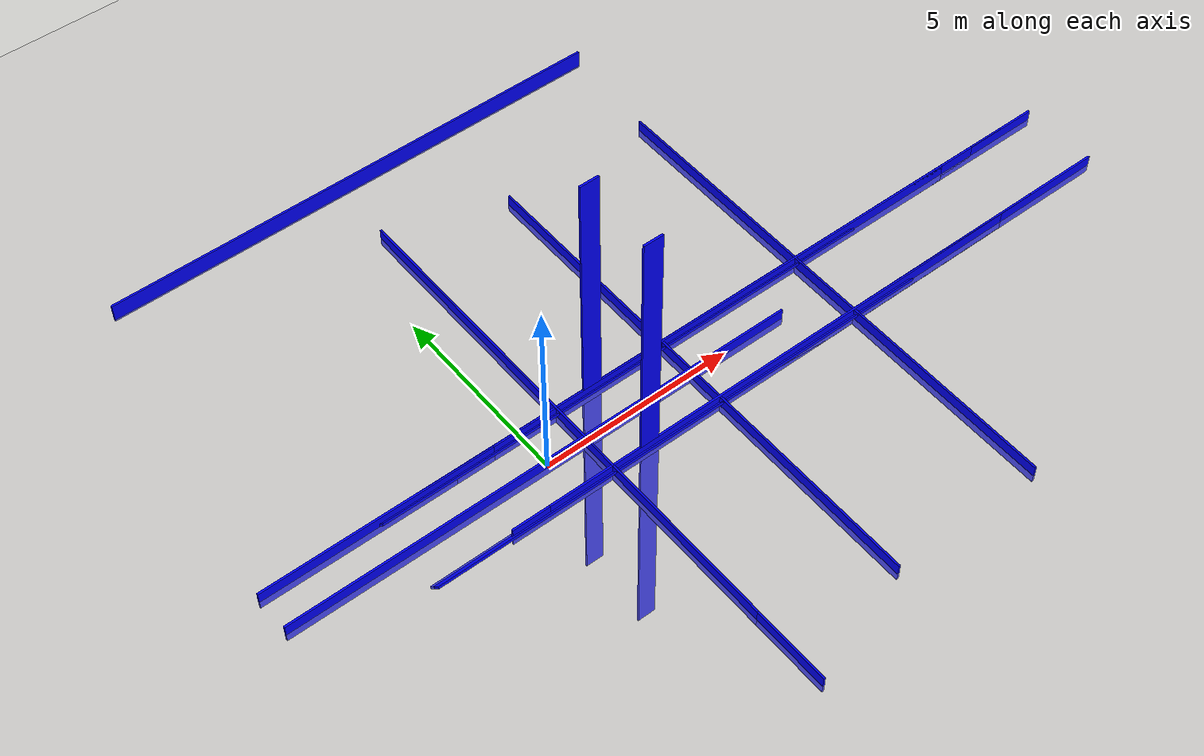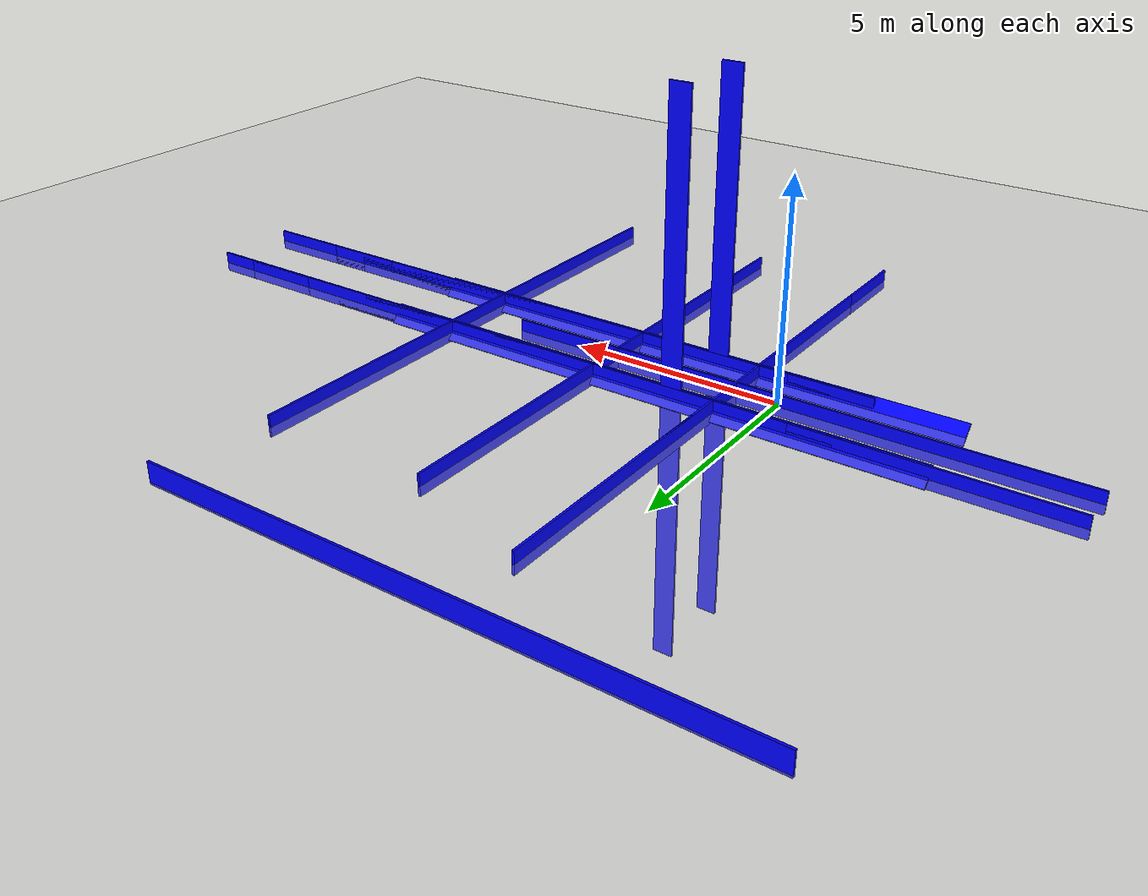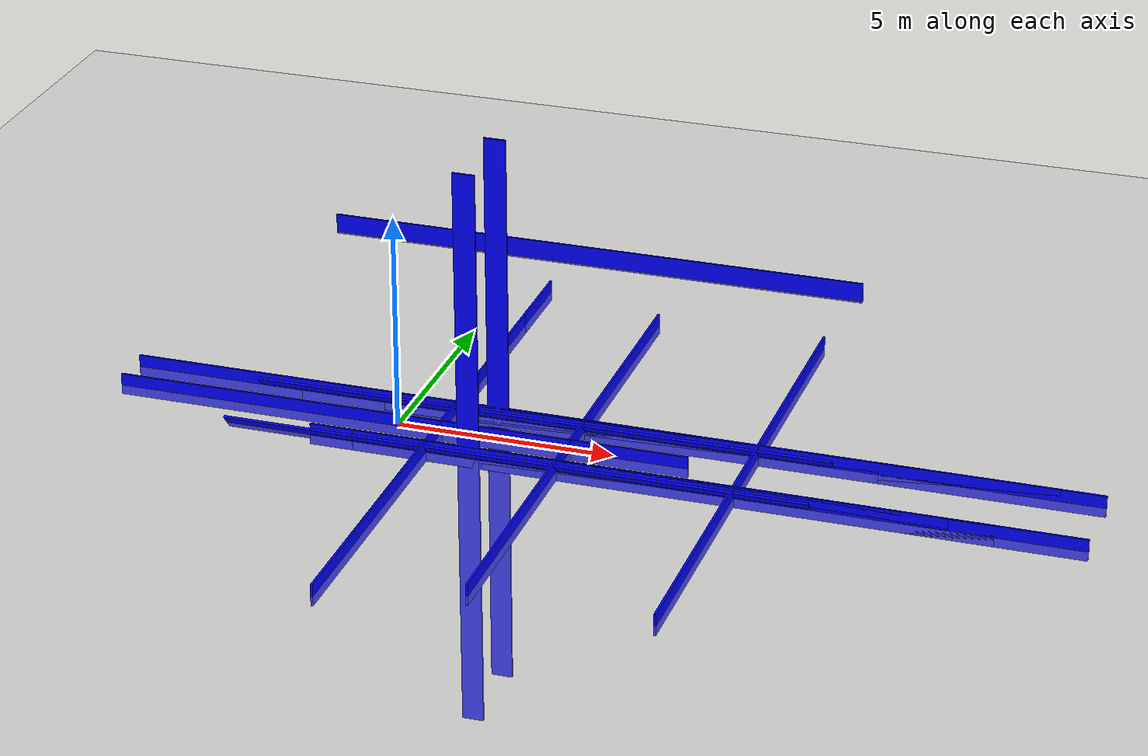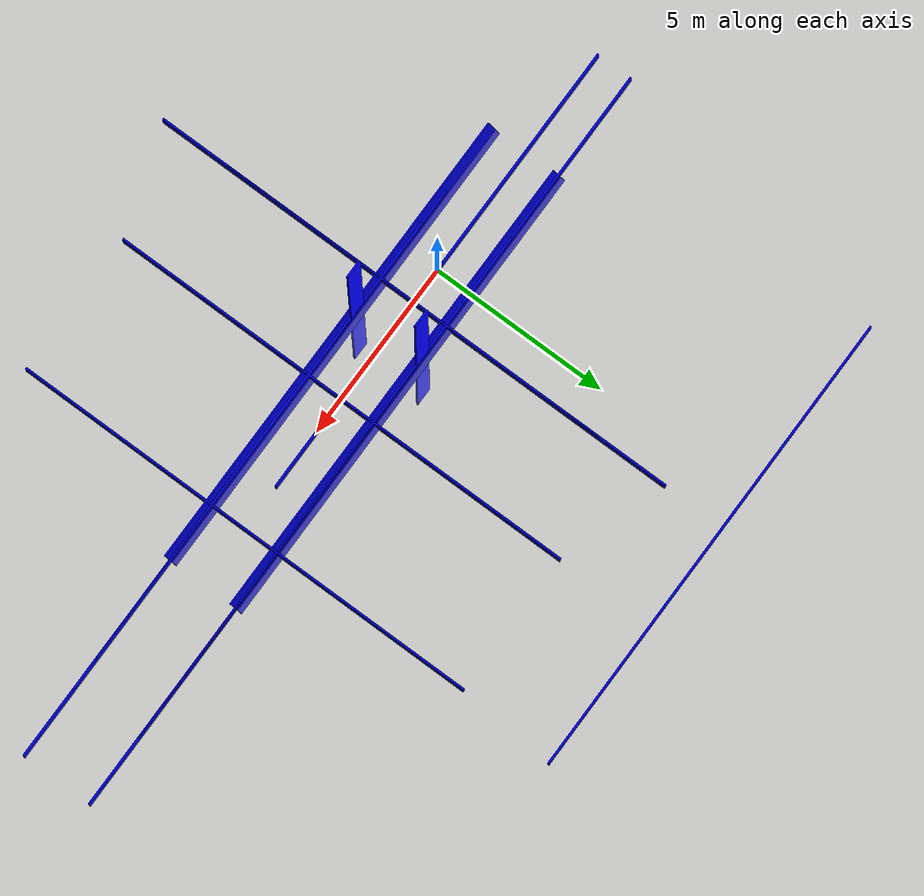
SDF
<?xml version="1.0" ?>
<sdf version='1.9'>
  <world name='obstacle_track'>

  <!-- Physics definitions -->
    <physics name='1ms' type='ignored'>
      <max_step_size>0.001</max_step_size>
      <real_time_factor>1</real_time_factor>
      <real_time_update_rate>1000</real_time_update_rate>
    </physics>
    <gravity>0 0 -9.8</gravity>
    <magnetic_field>6e-06 2.3e-05 -4.2e-05</magnetic_field>
    <atmosphere type='adiabatic'/>

    <!-- plugins -->
    <plugin name='gz::sim::systems::Physics' filename='ignition-gazebo-physics-system'/>
    <plugin name='gz::sim::systems::UserCommands' filename='ignition-gazebo-user-commands-system'/>
    <plugin name='gz::sim::systems::SceneBroadcaster' filename='ignition-gazebo-scene-broadcaster-system'/>
    <plugin name='gz::sim::systems::Contact' filename='ignition-gazebo-contact-system'/>
    <plugin filename="ignition-gazebo-imu-system" name="ignition::gazebo::systems::Imu"/>
    <plugin filename="gz-sim-sensors-system" name="gz::sim::systems::Sensors">
        <render_engine>ogre2</render_engine>
    </plugin>
    <gazebo>
        <plugin filename="libignition-gazebo-pose-publisher-system.so"
              name="ignition::gazebo::systems::PosePublisher">
          <publish_link_pose>true</publish_link_pose>
          <publish_visual_pose>false</publish_visual_pose>
          <publish_nested_model_pose>true</publish_nested_model_pose>
          <use_pose_vector_msg>true</use_pose_vector_msg>
          <static_publisher>false</static_publisher>
        </plugin>
    </gazebo>

    <scene>
      <ambient>0.4 0.4 0.4 1</ambient>
      <background>0.7 0.7 0.7 1</background>
      <shadows>true</shadows>
    </scene>

    <!--light simulation -->
    <light name='sun' type='directional'>
      <pose>0 0 10 0 -0 0</pose>
      <cast_shadows>true</cast_shadows>
      <intensity>1</intensity>
      <direction>-0.5 0.1 -0.9</direction>
      <diffuse>0.8 0.8 0.8 1</diffuse>
      <specular>0.2 0.2 0.2 1</specular>
      <attenuation>
        <range>1000</range>
        <linear>0.01</linear>
        <constant>0.90000000000000002</constant>
        <quadratic>0.001</quadratic>
      </attenuation>
      <spot>
        <inner_angle>0</inner_angle>
        <outer_angle>0</outer_angle>
        <falloff>0</falloff>
      </spot>
    </light>

    <!-- World Desc -->
    <model name='ground_plane'>
      <static>true</static>
      <link name='link'>
        <collision name='collision'>
          <geometry>
            <plane>
              <normal>0 0 1</normal>
              <size>100 100</size>
            </plane>
          </geometry>
          <surface>
            <friction>
              <ode/>
            </friction>
            <bounce/>
            <contact/>
          </surface>
        </collision>
        <visual name='visual'>
          <geometry>
            <plane>
              <normal>0 0 1</normal>
              <size>100 100</size>
            </plane>
          </geometry>
          <material>
            <ambient>0.8 0.8 0.8 1</ambient>
            <diffuse>0.8 0.8 0.8 1</diffuse>
            <specular>0.8 0.8 0.8 1</specular>
          </material>
        </visual>
        <pose>0 0 0 0 -0 0</pose>
        <inertial>
          <pose>0 0 0 0 -0 0</pose>
          <mass>1</mass>
          <inertia>
            <ixx>1</ixx>
            <ixy>0</ixy>
            <ixz>0</ixz>
            <iyy>1</iyy>
            <iyz>0</iyz>
            <izz>1</izz>
          </inertia>
        </inertial>
        <enable_wind>false</enable_wind>
      </link>
      <pose>0 0 0 0 -0 0</pose>
      <self_collide>false</self_collide>
    </model>

    <include>
        <name>ground_plane_image</name>
        <uri>../models/grass_plane/model.sdf</uri>
    </include>

    <include>
        <name>model_0</name>
        <uri>../models/straw_bale/model.sdf</uri>
        <pose>1.5374999999999979 9.45 0.175 0 0 0.0</pose>
        <pose>0 -1 0 0 0 0.0</pose>
    </include>
    <include>
        <name>model_1</name>
        <uri>../models/straw_bale/model.sdf</uri>
        <pose>0 1 0 0 0 0.0</pose>
    </include>
    <include>
        <name>model_2</name>
        <uri>../models/straw_bale/model.sdf</uri>
        <pose>1 -1 0 0 0 1.5707</pose>
    </include>
    <include>
        <name>model_3</name>
        <uri>../models/straw_bale/model.sdf</uri>
        <pose>1 1 0 0 0 1.5707</pose>
    </include>
    <include>
        <name>model_4</name>
        <uri>../models/straw_bale/model.sdf</uri>
        <pose>2 -1 0 0 1.5707 0.0</pose>
    </include>
    <include>
        <name>model_5</name>
        <uri>../models/straw_bale/model.sdf</uri>
        <pose>2 1 0 0 1.5707 0.0</pose>
    </include>
    <include>
        <name>model_6</name>
        <uri>../models/straw_bale/model.sdf</uri>
        <pose>3 -1 0 0.707 0 0.0</pose>
    </include>
    <include>
        <name>model_7</name>
        <uri>../models/straw_bale/model.sdf</uri>
        <pose>3 1 0 0.707 0 0.0</pose>
    </include>
    <include>
        <name>model_8</name>
        <uri>../models/straw_bale/model.sdf</uri>
        <pose>4 0 0 0 0 1.5707</pose>
    </include>
    <include>
        <name>model_9</name>
        <uri>../models/straw_bale/model.sdf</uri>
        <pose>4 1 0 0 0 0.0</pose>
    </include>
    <include>
        <name>model_10</name>
        <uri>../models/straw_bale/model.sdf</uri>
        <pose>5 -1 0 0 0 0.0</pose>
    </include>
    <include>
        <name>model_11</name>
        <uri>../models/straw_bale/model.sdf</uri>
        <pose>5 1 0 0 0 0.0</pose>
    </include>
    <include>
        <name>model_12</name>
        <uri>../models/straw_bale/model.sdf</uri>
        <pose>6 -1 0 0 0 0.0</pose>
    </include>
    <include>
        <name>model_13</name>
        <uri>../models/straw_bale/model.sdf</uri>
        <pose>6 1 0 0 0 0.0</pose>
    </include>
    <include>
        <name>model_14</name>
        <uri>../models/straw_bale/model.sdf</uri>
        <pose>7 -1 0 0 0 0.0</pose>
    </include>
    <include>
        <name>model_15</name>
        <uri>../models/straw_bale/model.sdf</uri>
        <pose>7 1 0 0 0 0.0</pose>
    </include>
    <include>
        <name>model_16</name>
        <uri>../models/straw_bale/model.sdf</uri>
        <pose>8 0 0 0 0 1.5707</pose>
    </include>
    <include>
        <name>model_17</name>
        <uri>../models/straw_bale/model.sdf</uri>
        <pose>8 1 0 0 0 0.0</pose>
    </include>
    <include>
        <name>model_18</name>
        <uri>../models/straw_bale/model.sdf</uri>
        <pose>9 -1 0 0 0 0.0</pose>
    </include>
    <include>
        <name>model_19</name>
        <uri>../models/straw_bale/model.sdf</uri>
        <pose>9 1 0 0 0 0.0</pose>
    </include>

    <!-- Robot Description -->
  </world>
</sdf>

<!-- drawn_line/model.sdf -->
<sdf version="1.6">
    <model name="drawn_line">
        <pose>0 0 0 0 0 0</pose>
        <static>true</static>
        <link name="link">
            <visual name="visual">
                <geometry>
                    <box>
                        <size>13.4112 0.05 0.5</size>
                    </box>
                </geometry>
                <material>
                    <ambient>0 0 1 1</ambient>
                </material>
            </visual>
            <collision name="collision">
      	        <geometry>
                    <box>
                        <size>13.4112 0.05 0.5</size>
                    </box>
                </geometry>
            </collision>
        </link>
    </model>
</sdf>
